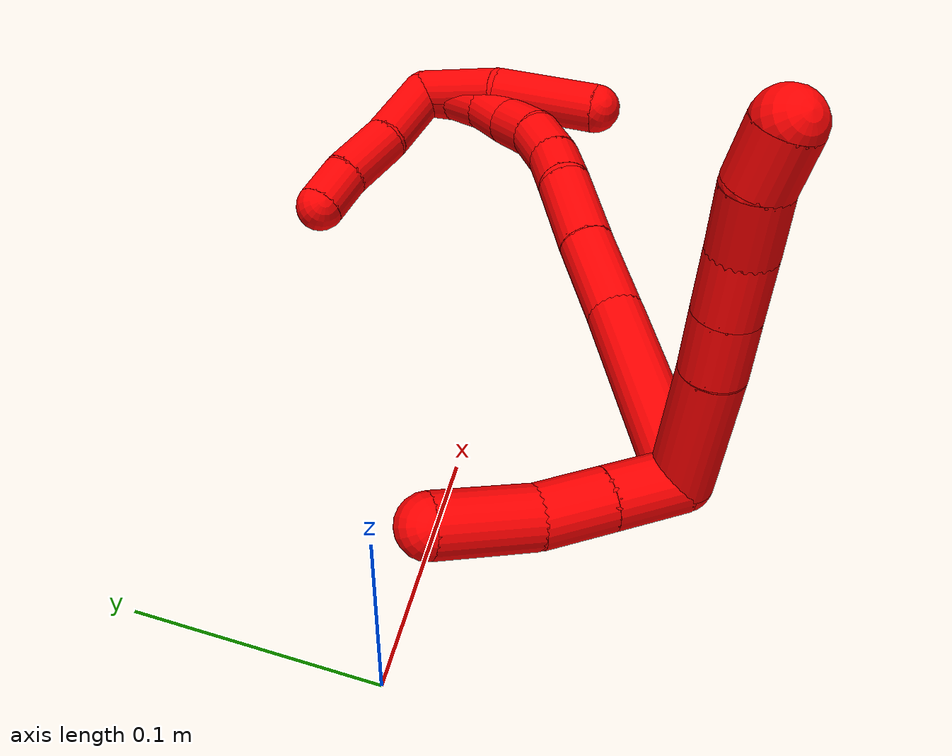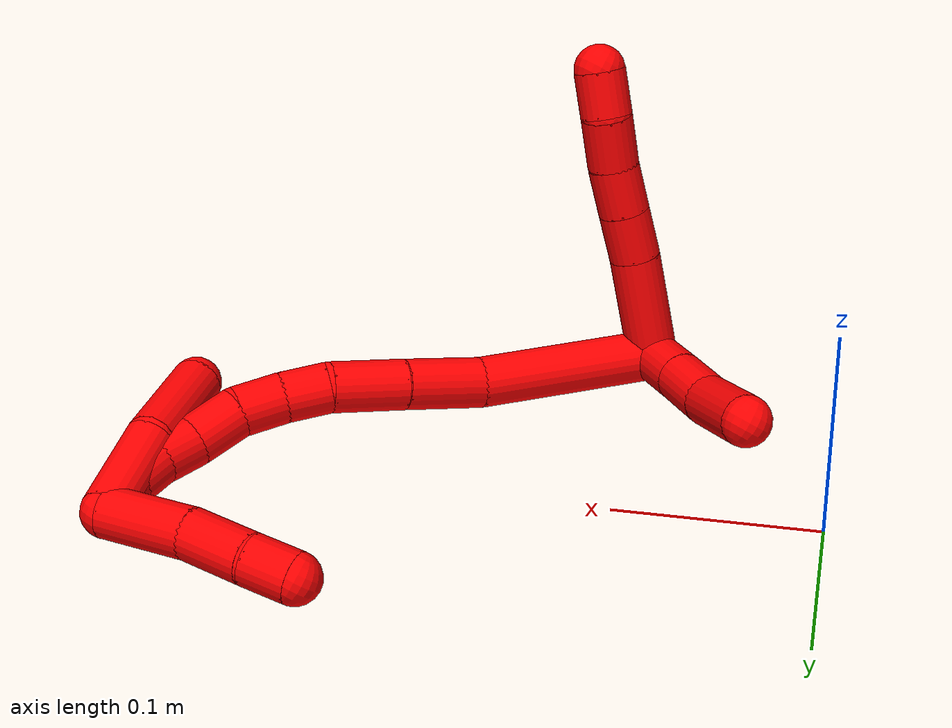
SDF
<sdf version="1.7">
 <world name="default">
  <model name="2">
   <static>0</static>
   <link name="2">
    <collision name="collision-cylinder-e_1_2_8">
     <pose>0.002657 0.018465 -0.019226 -2.37639 0.099359 -0.245852</pose>
     <geometry><cylinder><radius>0.0125</radius><length>0.053579</length></cylinder></geometry>
     <surface>
      <friction><ode><mu>1.16</mu><mu2>1.16</mu2><slip1>0</slip1><slip2>0</slip2></ode></friction>
      <contact><ode><kp>1e+06</kp><kd>1</kd><max_vel>0</max_vel><min_depth>0.001</min_depth></ode></contact>
     </surface>
    </collision>
    <visual name="visual-cylinder-e_1_2_8">
     <pose>0.002657 0.018465 -0.019226 -2.37639 0.099359 -0.245852</pose>
     <geometry><cylinder><radius>0.0125</radius><length>0.053579</length></cylinder></geometry>
     <material><ambient>1 0 0 1</ambient></material>
    </visual>
    <collision name="collision-cylinder-e_2_8_9">
     <pose>0.006583 0.045849 -0.0467 -2.31711 0.104062 -0.237065</pose>
     <geometry><cylinder><radius>0.0125</radius><length>0.024428</length></cylinder></geometry>
     <surface>
      <friction><ode><mu>1.16</mu><mu2>1.16</mu2><slip1>0</slip1><slip2>0</slip2></ode></friction>
      <contact><ode><kp>1e+06</kp><kd>1</kd><max_vel>0</max_vel><min_depth>0.001</min_depth></ode></contact>
     </surface>
    </collision>
    <visual name="visual-cylinder-e_2_8_9">
     <pose>0.006583 0.045849 -0.0467 -2.31711 0.104062 -0.237065</pose>
     <geometry><cylinder><radius>0.0125</radius><length>0.024428</length></cylinder></geometry>
     <material><ambient>1 0 0 1</ambient></material>
    </visual>
    <collision name="collision-cylinder-e_3_9_10">
     <pose>0.009083 0.06353 -0.063156 -2.32358 0.102176 -0.234847</pose>
     <geometry><cylinder><radius>0.0125</radius><length>0.024138</length></cylinder></geometry>
     <surface>
      <friction><ode><mu>1.16</mu><mu2>1.16</mu2><slip1>0</slip1><slip2>0</slip2></ode></friction>
      <contact><ode><kp>1e+06</kp><kd>1</kd><max_vel>0</max_vel><min_depth>0.001</min_depth></ode></contact>
     </surface>
    </collision>
    <visual name="visual-cylinder-e_3_9_10">
     <pose>0.009083 0.06353 -0.063156 -2.32358 0.102176 -0.234847</pose>
     <geometry><cylinder><radius>0.0125</radius><length>0.024138</length></cylinder></geometry>
     <material><ambient>1 0 0 1</ambient></material>
    </visual>
    <collision name="collision-cylinder-e_4_10_11">
     <pose>0.012386 0.080827 -0.080564 -2.39365 0.163646 -0.412001</pose>
     <geometry><cylinder><radius>0.0125</radius><length>0.025438</length></cylinder></geometry>
     <surface>
      <friction><ode><mu>1.16</mu><mu2>1.16</mu2><slip1>0</slip1><slip2>0</slip2></ode></friction>
      <contact><ode><kp>1e+06</kp><kd>1</kd><max_vel>0</max_vel><min_depth>0.001</min_depth></ode></contact>
     </surface>
    </collision>
    <visual name="visual-cylinder-e_4_10_11">
     <pose>0.012386 0.080827 -0.080564 -2.39365 0.163646 -0.412001</pose>
     <geometry><cylinder><radius>0.0125</radius><length>0.025438</length></cylinder></geometry>
     <material><ambient>1 0 0 1</ambient></material>
    </visual>
    <collision name="collision-cylinder-e_5_11_6">
     <pose>0.014131 0.096503 -0.098396 -2.45046 -0.029236 0.081169</pose>
     <geometry><cylinder><radius>0.0125</radius><length>0.022417</length></cylinder></geometry>
     <surface>
      <friction><ode><mu>1.16</mu><mu2>1.16</mu2><slip1>0</slip1><slip2>0</slip2></ode></friction>
      <contact><ode><kp>1e+06</kp><kd>1</kd><max_vel>0</max_vel><min_depth>0.001</min_depth></ode></contact>
     </surface>
    </collision>
    <visual name="visual-cylinder-e_5_11_6">
     <pose>0.014131 0.096503 -0.098396 -2.45046 -0.029236 0.081169</pose>
     <geometry><cylinder><radius>0.0125</radius><length>0.022417</length></cylinder></geometry>
     <material><ambient>1 0 0 1</ambient></material>
    </visual>
    <collision name="collision-cylinder-e_1_2_12">
     <pose>0.014844 -0.002707 0.001484 1.06938 1.36578 0.897887</pose>
     <geometry><cylinder><radius>0.0125</radius><length>0.030322</length></cylinder></geometry>
     <surface>
      <friction><ode><mu>1.16</mu><mu2>1.16</mu2><slip1>0</slip1><slip2>0</slip2></ode></friction>
      <contact><ode><kp>1e+06</kp><kd>1</kd><max_vel>0</max_vel><min_depth>0.001</min_depth></ode></contact>
     </surface>
    </collision>
    <visual name="visual-cylinder-e_1_2_12">
     <pose>0.014844 -0.002707 0.001484 1.06938 1.36578 0.897887</pose>
     <geometry><cylinder><radius>0.0125</radius><length>0.030322</length></cylinder></geometry>
     <material><ambient>1 0 0 1</ambient></material>
    </visual>
    <collision name="collision-cylinder-e_2_12_13">
     <pose>0.043447 -0.007928 0.004574 1.00229 1.35726 0.831921</pose>
     <geometry><cylinder><radius>0.0125</radius><length>0.028158</length></cylinder></geometry>
     <surface>
      <friction><ode><mu>1.16</mu><mu2>1.16</mu2><slip1>0</slip1><slip2>0</slip2></ode></friction>
      <contact><ode><kp>1e+06</kp><kd>1</kd><max_vel>0</max_vel><min_depth>0.001</min_depth></ode></contact>
     </surface>
    </collision>
    <visual name="visual-cylinder-e_2_12_13">
     <pose>0.043447 -0.007928 0.004574 1.00229 1.35726 0.831921</pose>
     <geometry><cylinder><radius>0.0125</radius><length>0.028158</length></cylinder></geometry>
     <material><ambient>1 0 0 1</ambient></material>
    </visual>
    <collision name="collision-cylinder-e_3_13_5">
     <pose>0.077964 -0.010669 0.006002 2.23461 1.55692 2.22363</pose>
     <geometry><cylinder><radius>0.0125</radius><length>0.041519</length></cylinder></geometry>
     <surface>
      <friction><ode><mu>1.16</mu><mu2>1.16</mu2><slip1>0</slip1><slip2>0</slip2></ode></friction>
      <contact><ode><kp>1e+06</kp><kd>1</kd><max_vel>0</max_vel><min_depth>0.001</min_depth></ode></contact>
     </surface>
    </collision>
    <visual name="visual-cylinder-e_3_13_5">
     <pose>0.077964 -0.010669 0.006002 2.23461 1.55692 2.22363</pose>
     <geometry><cylinder><radius>0.0125</radius><length>0.041519</length></cylinder></geometry>
     <material><ambient>1 0 0 1</ambient></material>
    </visual>
    <collision name="collision-cylinder-e_1_2_14">
     <pose>-0.002916 0.035974 0.026469 -0.936461 -0.065196 0.032981</pose>
     <geometry><cylinder><radius>0.0125</radius><length>0.089515</length></cylinder></geometry>
     <surface>
      <friction><ode><mu>1.16</mu><mu2>1.16</mu2><slip1>0</slip1><slip2>0</slip2></ode></friction>
      <contact><ode><kp>1e+06</kp><kd>1</kd><max_vel>0</max_vel><min_depth>0.001</min_depth></ode></contact>
     </surface>
    </collision>
    <visual name="visual-cylinder-e_1_2_14">
     <pose>-0.002916 0.035974 0.026469 -0.936461 -0.065196 0.032981</pose>
     <geometry><cylinder><radius>0.0125</radius><length>0.089515</length></cylinder></geometry>
     <material><ambient>1 0 0 1</ambient></material>
    </visual>
    <collision name="collision-cylinder-e_2_14_15">
     <pose>-0.004652 0.089655 0.061947 -1.10011 0.059309 -0.036374</pose>
     <geometry><cylinder><radius>0.0125</radius><length>0.039804</length></cylinder></geometry>
     <surface>
      <friction><ode><mu>1.16</mu><mu2>1.16</mu2><slip1>0</slip1><slip2>0</slip2></ode></friction>
      <contact><ode><kp>1e+06</kp><kd>1</kd><max_vel>0</max_vel><min_depth>0.001</min_depth></ode></contact>
     </surface>
    </collision>
    <visual name="visual-cylinder-e_2_14_15">
     <pose>-0.004652 0.089655 0.061947 -1.10011 0.059309 -0.036374</pose>
     <geometry><cylinder><radius>0.0125</radius><length>0.039804</length></cylinder></geometry>
     <material><ambient>1 0 0 1</ambient></material>
    </visual>
    <collision name="collision-cylinder-e_3_15_16">
     <pose>-0.003353 0.123865 0.079868 -1.07568 0.006392 -0.003813</pose>
     <geometry><cylinder><radius>0.0125</radius><length>0.037512</length></cylinder></geometry>
     <surface>
      <friction><ode><mu>1.16</mu><mu2>1.16</mu2><slip1>0</slip1><slip2>0</slip2></ode></friction>
      <contact><ode><kp>1e+06</kp><kd>1</kd><max_vel>0</max_vel><min_depth>0.001</min_depth></ode></contact>
     </surface>
    </collision>
    <visual name="visual-cylinder-e_3_15_16">
     <pose>-0.003353 0.123865 0.079868 -1.07568 0.006392 -0.003813</pose>
     <geometry><cylinder><radius>0.0125</radius><length>0.037512</length></cylinder></geometry>
     <material><ambient>1 0 0 1</ambient></material>
    </visual>
    <collision name="collision-cylinder-e_4_16_17">
     <pose>-0.004436 0.149045 0.09621 -0.862666 -0.10492 0.048323</pose>
     <geometry><cylinder><radius>0.0125</radius><length>0.022975</length></cylinder></geometry>
     <surface>
      <friction><ode><mu>1.16</mu><mu2>1.16</mu2><slip1>0</slip1><slip2>0</slip2></ode></friction>
      <contact><ode><kp>1e+06</kp><kd>1</kd><max_vel>0</max_vel><min_depth>0.001</min_depth></ode></contact>
     </surface>
    </collision>
    <visual name="visual-cylinder-e_4_16_17">
     <pose>-0.004436 0.149045 0.09621 -0.862666 -0.10492 0.048323</pose>
     <geometry><cylinder><radius>0.0125</radius><length>0.022975</length></cylinder></geometry>
     <material><ambient>1 0 0 1</ambient></material>
    </visual>
    <collision name="collision-cylinder-e_5_17_18">
     <pose>-0.004797 0.166358 0.111606 -0.825699 0.07151 -0.031334</pose>
     <geometry><cylinder><radius>0.0125</radius><length>0.023556</length></cylinder></geometry>
     <surface>
      <friction><ode><mu>1.16</mu><mu2>1.16</mu2><slip1>0</slip1><slip2>0</slip2></ode></friction>
      <contact><ode><kp>1e+06</kp><kd>1</kd><max_vel>0</max_vel><min_depth>0.001</min_depth></ode></contact>
     </surface>
    </collision>
    <visual name="visual-cylinder-e_5_17_18">
     <pose>-0.004797 0.166358 0.111606 -0.825699 0.07151 -0.031334</pose>
     <geometry><cylinder><radius>0.0125</radius><length>0.023556</length></cylinder></geometry>
     <material><ambient>1 0 0 1</ambient></material>
    </visual>
    <collision name="collision-cylinder-e_6_18_19">
     <pose>-0.001379 0.181784 0.13007 -0.57417 0.203233 -0.060192</pose>
     <geometry><cylinder><radius>0.0125</radius><length>0.025533</length></cylinder></geometry>
     <surface>
      <friction><ode><mu>1.16</mu><mu2>1.16</mu2><slip1>0</slip1><slip2>0</slip2></ode></friction>
      <contact><ode><kp>1e+06</kp><kd>1</kd><max_vel>0</max_vel><min_depth>0.001</min_depth></ode></contact>
     </surface>
    </collision>
    <visual name="visual-cylinder-e_6_18_19">
     <pose>-0.001379 0.181784 0.13007 -0.57417 0.203233 -0.060192</pose>
     <geometry><cylinder><radius>0.0125</radius><length>0.025533</length></cylinder></geometry>
     <material><ambient>1 0 0 1</ambient></material>
    </visual>
    <collision name="collision-cylinder-e_7_19_20">
     <pose>0.004979 0.195075 0.147666 -0.741485 0.374379 -0.146986</pose>
     <geometry><cylinder><radius>0.0125</radius><length>0.020678</length></cylinder></geometry>
     <surface>
      <friction><ode><mu>1.16</mu><mu2>1.16</mu2><slip1>0</slip1><slip2>0</slip2></ode></friction>
      <contact><ode><kp>1e+06</kp><kd>1</kd><max_vel>0</max_vel><min_depth>0.001</min_depth></ode></contact>
     </surface>
    </collision>
    <visual name="visual-cylinder-e_7_19_20">
     <pose>0.004979 0.195075 0.147666 -0.741485 0.374379 -0.146986</pose>
     <geometry><cylinder><radius>0.0125</radius><length>0.020678</length></cylinder></geometry>
     <material><ambient>1 0 0 1</ambient></material>
    </visual>
    <collision name="collision-cylinder-e_8_20_21">
     <pose>0.014228 0.206459 0.16167 -0.615547 0.573796 -0.187023</pose>
     <geometry><cylinder><radius>0.0125</radius><length>0.020147</length></cylinder></geometry>
     <surface>
      <friction><ode><mu>1.16</mu><mu2>1.16</mu2><slip1>0</slip1><slip2>0</slip2></ode></friction>
      <contact><ode><kp>1e+06</kp><kd>1</kd><max_vel>0</max_vel><min_depth>0.001</min_depth></ode></contact>
     </surface>
    </collision>
    <visual name="visual-cylinder-e_8_20_21">
     <pose>0.014228 0.206459 0.16167 -0.615547 0.573796 -0.187023</pose>
     <geometry><cylinder><radius>0.0125</radius><length>0.020147</length></cylinder></geometry>
     <material><ambient>1 0 0 1</ambient></material>
    </visual>
    <collision name="collision-cylinder-e_9_21_1">
     <pose>0.0267 0.214438 0.175225 -0.435635 0.762462 -0.176972</pose>
     <geometry><cylinder><radius>0.0125</radius><length>0.020281</length></cylinder></geometry>
     <surface>
      <friction><ode><mu>1.16</mu><mu2>1.16</mu2><slip1>0</slip1><slip2>0</slip2></ode></friction>
      <contact><ode><kp>1e+06</kp><kd>1</kd><max_vel>0</max_vel><min_depth>0.001</min_depth></ode></contact>
     </surface>
    </collision>
    <visual name="visual-cylinder-e_9_21_1">
     <pose>0.0267 0.214438 0.175225 -0.435635 0.762462 -0.176972</pose>
     <geometry><cylinder><radius>0.0125</radius><length>0.020281</length></cylinder></geometry>
     <material><ambient>1 0 0 1</ambient></material>
    </visual>
    <collision name="collision-cylinder-e_1_1_22">
     <pose>0.047367 0.201729 0.175745 1.94068 0.678455 0.951597</pose>
     <geometry><cylinder><radius>0.0125</radius><length>0.043543</length></cylinder></geometry>
     <surface>
      <friction><ode><mu>1.16</mu><mu2>1.16</mu2><slip1>0</slip1><slip2>0</slip2></ode></friction>
      <contact><ode><kp>1e+06</kp><kd>1</kd><max_vel>0</max_vel><min_depth>0.001</min_depth></ode></contact>
     </surface>
    </collision>
    <visual name="visual-cylinder-e_1_1_22">
     <pose>0.047367 0.201729 0.175745 1.94068 0.678455 0.951597</pose>
     <geometry><cylinder><radius>0.0125</radius><length>0.043543</length></cylinder></geometry>
     <material><ambient>1 0 0 1</ambient></material>
    </visual>
    <collision name="collision-cylinder-e_2_22_23">
     <pose>0.073105 0.174931 0.166905 1.81271 0.817485 1.01029</pose>
     <geometry><cylinder><radius>0.0125</radius><length>0.033108</length></cylinder></geometry>
     <surface>
      <friction><ode><mu>1.16</mu><mu2>1.16</mu2><slip1>0</slip1><slip2>0</slip2></ode></friction>
      <contact><ode><kp>1e+06</kp><kd>1</kd><max_vel>0</max_vel><min_depth>0.001</min_depth></ode></contact>
     </surface>
    </collision>
    <visual name="visual-cylinder-e_2_22_23">
     <pose>0.073105 0.174931 0.166905 1.81271 0.817485 1.01029</pose>
     <geometry><cylinder><radius>0.0125</radius><length>0.033108</length></cylinder></geometry>
     <material><ambient>1 0 0 1</ambient></material>
    </visual>
    <collision name="collision-cylinder-e_3_23_4">
     <pose>0.092463 0.155006 0.162321 1.77733 0.673622 0.814088</pose>
     <geometry><cylinder><radius>0.0125</radius><length>0.02335</length></cylinder></geometry>
     <surface>
      <friction><ode><mu>1.16</mu><mu2>1.16</mu2><slip1>0</slip1><slip2>0</slip2></ode></friction>
      <contact><ode><kp>1e+06</kp><kd>1</kd><max_vel>0</max_vel><min_depth>0.001</min_depth></ode></contact>
     </surface>
    </collision>
    <visual name="visual-cylinder-e_3_23_4">
     <pose>0.092463 0.155006 0.162321 1.77733 0.673622 0.814088</pose>
     <geometry><cylinder><radius>0.0125</radius><length>0.02335</length></cylinder></geometry>
     <material><ambient>1 0 0 1</ambient></material>
    </visual>
    <collision name="collision-cylinder-e_1_1_24">
     <pose>0.01864 0.212669 0.164915 2.86229 -0.706749 -2.41341</pose>
     <geometry><cylinder><radius>0.0125</radius><length>0.046396</length></cylinder></geometry>
     <surface>
      <friction><ode><mu>1.16</mu><mu2>1.16</mu2><slip1>0</slip1><slip2>0</slip2></ode></friction>
      <contact><ode><kp>1e+06</kp><kd>1</kd><max_vel>0</max_vel><min_depth>0.001</min_depth></ode></contact>
     </surface>
    </collision>
    <visual name="visual-cylinder-e_1_1_24">
     <pose>0.01864 0.212669 0.164915 2.86229 -0.706749 -2.41341</pose>
     <geometry><cylinder><radius>0.0125</radius><length>0.046396</length></cylinder></geometry>
     <material><ambient>1 0 0 1</ambient></material>
    </visual>
    <collision name="collision-cylinder-e_2_24_3">
     <pose>-0.017421 0.199109 0.13375 2.59231 -0.900135 -2.08566</pose>
     <geometry><cylinder><radius>0.0125</radius><length>0.053604</length></cylinder></geometry>
     <surface>
      <friction><ode><mu>1.16</mu><mu2>1.16</mu2><slip1>0</slip1><slip2>0</slip2></ode></friction>
      <contact><ode><kp>1e+06</kp><kd>1</kd><max_vel>0</max_vel><min_depth>0.001</min_depth></ode></contact>
     </surface>
    </collision>
    <visual name="visual-cylinder-e_2_24_3">
     <pose>-0.017421 0.199109 0.13375 2.59231 -0.900135 -2.08566</pose>
     <geometry><cylinder><radius>0.0125</radius><length>0.053604</length></cylinder></geometry>
     <material><ambient>1 0 0 1</ambient></material>
    </visual>
    <collision name="collision-sphere-3">
     <pose>-0.038418 0.190412 0.119543 0 -0 0</pose>
     <geometry><sphere><radius>0.0125</radius></sphere></geometry>
     <surface>
      <friction><ode><mu>1.16</mu><mu2>1.16</mu2><slip1>0</slip1><slip2>0</slip2></ode></friction>
      <contact><ode><kp>1e+06</kp><kd>1</kd><max_vel>0</max_vel><min_depth>0.001</min_depth></ode></contact>
     </surface>
    </collision>
    <visual name="visual-sphere-3">
     <pose>-0.038418 0.190412 0.119543 0 -0 0</pose>
     <geometry><sphere><radius>0.0125</radius></sphere></geometry>
     <material><ambient>1 0 0 1</ambient></material>
    </visual>
    <collision name="collision-sphere-24">
     <pose>0.003576 0.207805 0.147957 0 -0 0</pose>
     <geometry><sphere><radius>0.0125</radius></sphere></geometry>
     <surface>
      <friction><ode><mu>1.16</mu><mu2>1.16</mu2><slip1>0</slip1><slip2>0</slip2></ode></friction>
      <contact><ode><kp>1e+06</kp><kd>1</kd><max_vel>0</max_vel><min_depth>0.001</min_depth></ode></contact>
     </surface>
    </collision>
    <visual name="visual-sphere-24">
     <pose>0.003576 0.207805 0.147957 0 -0 0</pose>
     <geometry><sphere><radius>0.0125</radius></sphere></geometry>
     <material><ambient>1 0 0 1</ambient></material>
    </visual>
    <collision name="collision-sphere-4">
     <pose>0.099746 0.146075 0.16045 0 -0 0</pose>
     <geometry><sphere><radius>0.0125</radius></sphere></geometry>
     <surface>
      <friction><ode><mu>1.16</mu><mu2>1.16</mu2><slip1>0</slip1><slip2>0</slip2></ode></friction>
      <contact><ode><kp>1e+06</kp><kd>1</kd><max_vel>0</max_vel><min_depth>0.001</min_depth></ode></contact>
     </surface>
    </collision>
    <visual name="visual-sphere-4">
     <pose>0.099746 0.146075 0.16045 0 -0 0</pose>
     <geometry><sphere><radius>0.0125</radius></sphere></geometry>
     <material><ambient>1 0 0 1</ambient></material>
    </visual>
    <collision name="collision-sphere-23">
     <pose>0.08518 0.163937 0.164192 0 -0 0</pose>
     <geometry><sphere><radius>0.0125</radius></sphere></geometry>
     <surface>
      <friction><ode><mu>1.16</mu><mu2>1.16</mu2><slip1>0</slip1><slip2>0</slip2></ode></friction>
      <contact><ode><kp>1e+06</kp><kd>1</kd><max_vel>0</max_vel><min_depth>0.001</min_depth></ode></contact>
     </surface>
    </collision>
    <visual name="visual-sphere-23">
     <pose>0.08518 0.163937 0.164192 0 -0 0</pose>
     <geometry><sphere><radius>0.0125</radius></sphere></geometry>
     <material><ambient>1 0 0 1</ambient></material>
    </visual>
    <collision name="collision-sphere-22">
     <pose>0.06103 0.185925 0.169618 0 -0 0</pose>
     <geometry><sphere><radius>0.0125</radius></sphere></geometry>
     <surface>
      <friction><ode><mu>1.16</mu><mu2>1.16</mu2><slip1>0</slip1><slip2>0</slip2></ode></friction>
      <contact><ode><kp>1e+06</kp><kd>1</kd><max_vel>0</max_vel><min_depth>0.001</min_depth></ode></contact>
     </surface>
    </collision>
    <visual name="visual-sphere-22">
     <pose>0.06103 0.185925 0.169618 0 -0 0</pose>
     <geometry><sphere><radius>0.0125</radius></sphere></geometry>
     <material><ambient>1 0 0 1</ambient></material>
    </visual>
    <collision name="collision-sphere-1">
     <pose>0.033704 0.217532 0.181873 0 -0 0</pose>
     <geometry><sphere><radius>0.0125</radius></sphere></geometry>
     <surface>
      <friction><ode><mu>1.16</mu><mu2>1.16</mu2><slip1>0</slip1><slip2>0</slip2></ode></friction>
      <contact><ode><kp>1e+06</kp><kd>1</kd><max_vel>0</max_vel><min_depth>0.001</min_depth></ode></contact>
     </surface>
    </collision>
    <visual name="visual-sphere-1">
     <pose>0.033704 0.217532 0.181873 0 -0 0</pose>
     <geometry><sphere><radius>0.0125</radius></sphere></geometry>
     <material><ambient>1 0 0 1</ambient></material>
    </visual>
    <collision name="collision-sphere-21">
     <pose>0.019696 0.211343 0.168577 0 -0 0</pose>
     <geometry><sphere><radius>0.0125</radius></sphere></geometry>
     <surface>
      <friction><ode><mu>1.16</mu><mu2>1.16</mu2><slip1>0</slip1><slip2>0</slip2></ode></friction>
      <contact><ode><kp>1e+06</kp><kd>1</kd><max_vel>0</max_vel><min_depth>0.001</min_depth></ode></contact>
     </surface>
    </collision>
    <visual name="visual-sphere-21">
     <pose>0.019696 0.211343 0.168577 0 -0 0</pose>
     <geometry><sphere><radius>0.0125</radius></sphere></geometry>
     <material><ambient>1 0 0 1</ambient></material>
    </visual>
    <collision name="collision-sphere-6">
     <pose>0.013803 0.103645 -0.107029 0 -0 0</pose>
     <geometry><sphere><radius>0.0125</radius></sphere></geometry>
     <surface>
      <friction><ode><mu>1.16</mu><mu2>1.16</mu2><slip1>0</slip1><slip2>0</slip2></ode></friction>
      <contact><ode><kp>1e+06</kp><kd>1</kd><max_vel>0</max_vel><min_depth>0.001</min_depth></ode></contact>
     </surface>
    </collision>
    <visual name="visual-sphere-6">
     <pose>0.013803 0.103645 -0.107029 0 -0 0</pose>
     <geometry><sphere><radius>0.0125</radius></sphere></geometry>
     <material><ambient>1 0 0 1</ambient></material>
    </visual>
    <collision name="collision-sphere-11">
     <pose>0.014459 0.089362 -0.089764 0 -0 0</pose>
     <geometry><sphere><radius>0.0125</radius></sphere></geometry>
     <surface>
      <friction><ode><mu>1.16</mu><mu2>1.16</mu2><slip1>0</slip1><slip2>0</slip2></ode></friction>
      <contact><ode><kp>1e+06</kp><kd>1</kd><max_vel>0</max_vel><min_depth>0.001</min_depth></ode></contact>
     </surface>
    </collision>
    <visual name="visual-sphere-11">
     <pose>0.014459 0.089362 -0.089764 0 -0 0</pose>
     <geometry><sphere><radius>0.0125</radius></sphere></geometry>
     <material><ambient>1 0 0 1</ambient></material>
    </visual>
    <collision name="collision-sphere-10">
     <pose>0.010314 0.072292 -0.071364 0 -0 0</pose>
     <geometry><sphere><radius>0.0125</radius></sphere></geometry>
     <surface>
      <friction><ode><mu>1.16</mu><mu2>1.16</mu2><slip1>0</slip1><slip2>0</slip2></ode></friction>
      <contact><ode><kp>1e+06</kp><kd>1</kd><max_vel>0</max_vel><min_depth>0.001</min_depth></ode></contact>
     </surface>
    </collision>
    <visual name="visual-sphere-10">
     <pose>0.010314 0.072292 -0.071364 0 -0 0</pose>
     <geometry><sphere><radius>0.0125</radius></sphere></geometry>
     <material><ambient>1 0 0 1</ambient></material>
    </visual>
    <collision name="collision-sphere-9">
     <pose>0.007852 0.054768 -0.054948 0 -0 0</pose>
     <geometry><sphere><radius>0.0125</radius></sphere></geometry>
     <surface>
      <friction><ode><mu>1.16</mu><mu2>1.16</mu2><slip1>0</slip1><slip2>0</slip2></ode></friction>
      <contact><ode><kp>1e+06</kp><kd>1</kd><max_vel>0</max_vel><min_depth>0.001</min_depth></ode></contact>
     </surface>
    </collision>
    <visual name="visual-sphere-9">
     <pose>0.007852 0.054768 -0.054948 0 -0 0</pose>
     <geometry><sphere><radius>0.0125</radius></sphere></geometry>
     <material><ambient>1 0 0 1</ambient></material>
    </visual>
    <collision name="collision-sphere-2">
     <geometry><sphere><radius>0.0125</radius></sphere></geometry>
     <surface>
      <friction><ode><mu>1.16</mu><mu2>1.16</mu2><slip1>0</slip1><slip2>0</slip2></ode></friction>
      <contact><ode><kp>1e+06</kp><kd>1</kd><max_vel>0</max_vel><min_depth>0.001</min_depth></ode></contact>
     </surface>
    </collision>
    <visual name="visual-sphere-2">
     <geometry><sphere><radius>0.0125</radius></sphere></geometry>
     <material><ambient>1 0 0 1</ambient></material>
    </visual>
    <collision name="collision-sphere-19">
     <pose>0.001198 0.188575 0.140569 0 -0 0</pose>
     <geometry><sphere><radius>0.0125</radius></sphere></geometry>
     <surface>
      <friction><ode><mu>1.16</mu><mu2>1.16</mu2><slip1>0</slip1><slip2>0</slip2></ode></friction>
      <contact><ode><kp>1e+06</kp><kd>1</kd><max_vel>0</max_vel><min_depth>0.001</min_depth></ode></contact>
     </surface>
    </collision>
    <visual name="visual-sphere-19">
     <pose>0.001198 0.188575 0.140569 0 -0 0</pose>
     <geometry><sphere><radius>0.0125</radius></sphere></geometry>
     <material><ambient>1 0 0 1</ambient></material>
    </visual>
    <collision name="collision-sphere-8">
     <pose>0.005315 0.03693 -0.038453 0 -0 0</pose>
     <geometry><sphere><radius>0.0125</radius></sphere></geometry>
     <surface>
      <friction><ode><mu>1.16</mu><mu2>1.16</mu2><slip1>0</slip1><slip2>0</slip2></ode></friction>
      <contact><ode><kp>1e+06</kp><kd>1</kd><max_vel>0</max_vel><min_depth>0.001</min_depth></ode></contact>
     </surface>
    </collision>
    <visual name="visual-sphere-8">
     <pose>0.005315 0.03693 -0.038453 0 -0 0</pose>
     <geometry><sphere><radius>0.0125</radius></sphere></geometry>
     <material><ambient>1 0 0 1</ambient></material>
    </visual>
    <collision name="collision-sphere-12">
     <pose>0.029687 -0.005413 0.002967 0 -0 0</pose>
     <geometry><sphere><radius>0.0125</radius></sphere></geometry>
     <surface>
      <friction><ode><mu>1.16</mu><mu2>1.16</mu2><slip1>0</slip1><slip2>0</slip2></ode></friction>
      <contact><ode><kp>1e+06</kp><kd>1</kd><max_vel>0</max_vel><min_depth>0.001</min_depth></ode></contact>
     </surface>
    </collision>
    <visual name="visual-sphere-12">
     <pose>0.029687 -0.005413 0.002967 0 -0 0</pose>
     <geometry><sphere><radius>0.0125</radius></sphere></geometry>
     <material><ambient>1 0 0 1</ambient></material>
    </visual>
    <collision name="collision-sphere-13">
     <pose>0.057206 -0.010442 0.00618 0 -0 0</pose>
     <geometry><sphere><radius>0.0125</radius></sphere></geometry>
     <surface>
      <friction><ode><mu>1.16</mu><mu2>1.16</mu2><slip1>0</slip1><slip2>0</slip2></ode></friction>
      <contact><ode><kp>1e+06</kp><kd>1</kd><max_vel>0</max_vel><min_depth>0.001</min_depth></ode></contact>
     </surface>
    </collision>
    <visual name="visual-sphere-13">
     <pose>0.057206 -0.010442 0.00618 0 -0 0</pose>
     <geometry><sphere><radius>0.0125</radius></sphere></geometry>
     <material><ambient>1 0 0 1</ambient></material>
    </visual>
    <collision name="collision-sphere-5">
     <pose>0.098721 -0.010896 0.005825 0 -0 0</pose>
     <geometry><sphere><radius>0.0125</radius></sphere></geometry>
     <surface>
      <friction><ode><mu>1.16</mu><mu2>1.16</mu2><slip1>0</slip1><slip2>0</slip2></ode></friction>
      <contact><ode><kp>1e+06</kp><kd>1</kd><max_vel>0</max_vel><min_depth>0.001</min_depth></ode></contact>
     </surface>
    </collision>
    <visual name="visual-sphere-5">
     <pose>0.098721 -0.010896 0.005825 0 -0 0</pose>
     <geometry><sphere><radius>0.0125</radius></sphere></geometry>
     <material><ambient>1 0 0 1</ambient></material>
    </visual>
    <collision name="collision-sphere-14">
     <pose>-0.005832 0.071948 0.052938 0 -0 0</pose>
     <geometry><sphere><radius>0.0125</radius></sphere></geometry>
     <surface>
      <friction><ode><mu>1.16</mu><mu2>1.16</mu2><slip1>0</slip1><slip2>0</slip2></ode></friction>
      <contact><ode><kp>1e+06</kp><kd>1</kd><max_vel>0</max_vel><min_depth>0.001</min_depth></ode></contact>
     </surface>
    </collision>
    <visual name="visual-sphere-14">
     <pose>-0.005832 0.071948 0.052938 0 -0 0</pose>
     <geometry><sphere><radius>0.0125</radius></sphere></geometry>
     <material><ambient>1 0 0 1</ambient></material>
    </visual>
    <collision name="collision-sphere-15">
     <pose>-0.003473 0.107361 0.070957 0 -0 0</pose>
     <geometry><sphere><radius>0.0125</radius></sphere></geometry>
     <surface>
      <friction><ode><mu>1.16</mu><mu2>1.16</mu2><slip1>0</slip1><slip2>0</slip2></ode></friction>
      <contact><ode><kp>1e+06</kp><kd>1</kd><max_vel>0</max_vel><min_depth>0.001</min_depth></ode></contact>
     </surface>
    </collision>
    <visual name="visual-sphere-15">
     <pose>-0.003473 0.107361 0.070957 0 -0 0</pose>
     <geometry><sphere><radius>0.0125</radius></sphere></geometry>
     <material><ambient>1 0 0 1</ambient></material>
    </visual>
    <collision name="collision-sphere-16">
     <pose>-0.003233 0.140368 0.08878 0 -0 0</pose>
     <geometry><sphere><radius>0.0125</radius></sphere></geometry>
     <surface>
      <friction><ode><mu>1.16</mu><mu2>1.16</mu2><slip1>0</slip1><slip2>0</slip2></ode></friction>
      <contact><ode><kp>1e+06</kp><kd>1</kd><max_vel>0</max_vel><min_depth>0.001</min_depth></ode></contact>
     </surface>
    </collision>
    <visual name="visual-sphere-16">
     <pose>-0.003233 0.140368 0.08878 0 -0 0</pose>
     <geometry><sphere><radius>0.0125</radius></sphere></geometry>
     <material><ambient>1 0 0 1</ambient></material>
    </visual>
    <collision name="collision-sphere-17">
     <pose>-0.005639 0.157723 0.103641 0 -0 0</pose>
     <geometry><sphere><radius>0.0125</radius></sphere></geometry>
     <surface>
      <friction><ode><mu>1.16</mu><mu2>1.16</mu2><slip1>0</slip1><slip2>0</slip2></ode></friction>
      <contact><ode><kp>1e+06</kp><kd>1</kd><max_vel>0</max_vel><min_depth>0.001</min_depth></ode></contact>
     </surface>
    </collision>
    <visual name="visual-sphere-17">
     <pose>-0.005639 0.157723 0.103641 0 -0 0</pose>
     <geometry><sphere><radius>0.0125</radius></sphere></geometry>
     <material><ambient>1 0 0 1</ambient></material>
    </visual>
    <collision name="collision-sphere-18">
     <pose>-0.003956 0.174993 0.119572 0 -0 0</pose>
     <geometry><sphere><radius>0.0125</radius></sphere></geometry>
     <surface>
      <friction><ode><mu>1.16</mu><mu2>1.16</mu2><slip1>0</slip1><slip2>0</slip2></ode></friction>
      <contact><ode><kp>1e+06</kp><kd>1</kd><max_vel>0</max_vel><min_depth>0.001</min_depth></ode></contact>
     </surface>
    </collision>
    <visual name="visual-sphere-18">
     <pose>-0.003956 0.174993 0.119572 0 -0 0</pose>
     <geometry><sphere><radius>0.0125</radius></sphere></geometry>
     <material><ambient>1 0 0 1</ambient></material>
    </visual>
    <collision name="collision-sphere-20">
     <pose>0.008759 0.201574 0.154762 0 -0 0</pose>
     <geometry><sphere><radius>0.0125</radius></sphere></geometry>
     <surface>
      <friction><ode><mu>1.16</mu><mu2>1.16</mu2><slip1>0</slip1><slip2>0</slip2></ode></friction>
      <contact><ode><kp>1e+06</kp><kd>1</kd><max_vel>0</max_vel><min_depth>0.001</min_depth></ode></contact>
     </surface>
    </collision>
    <visual name="visual-sphere-20">
     <pose>0.008759 0.201574 0.154762 0 -0 0</pose>
     <geometry><sphere><radius>0.0125</radius></sphere></geometry>
     <material><ambient>1 0 0 1</ambient></material>
    </visual>
    <inertial>
     <pose>0.016995 0.109081 0.066823 0 -0 0</pose>
     <mass>0.75</mass>
     <inertia>
      <ixx>0.000109</ixx>
      <ixy>0</ixy>
      <ixz>0</ixz>
      <iyy>8.4e-05</iyy>
      <iyz>0</iyz>
      <izz>-7.3e-05</izz>
     </inertia>
    </inertial>
   </link>
   <pose>0.092622 -0.089104 0.040664 2.54842 -0.215238 2.07906</pose>
  </model>
 </world>
</sdf>
